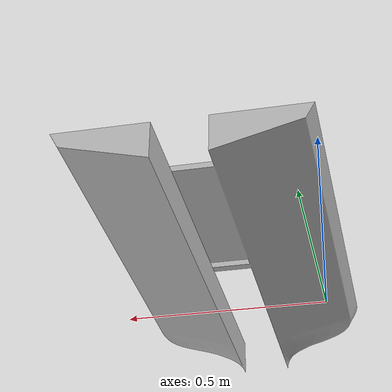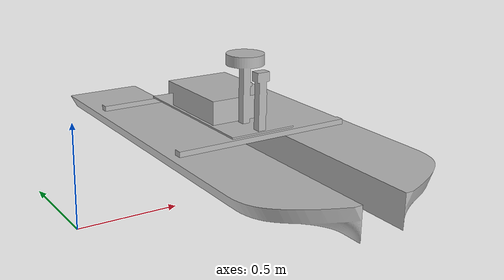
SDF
<?xml version='1.0'?>
<sdf version='1.6'>
  <model name='ida_model'>
    <static>true</static>

    <!-- Main hull link — named base_link to match TF2 convention -->
    <link name='base_link'>
      <visual name='visual'>
        <pose>0 0 0.5 1.5708 0 0</pose>
        <geometry>
          <mesh>
            <uri>Montaj1.STL</uri>
            <scale>0.001 0.001 0.001</scale>
          </mesh>
        </geometry>
      </visual>
      <collision name='collision'>
        <pose>0 0 0.5 1.5708 0 0</pose>
        <geometry>
          <mesh>
            <uri>Montaj1.STL</uri>
            <scale>0.001 0.001 0.001</scale>
          </mesh>
        </geometry>
      </collision>

      <!-- IMU — 100 Hz, body-fixed, provides orientation and angular velocity -->
      <sensor name="imu_sensor" type="imu">
        <always_on>true</always_on>
        <update_rate>100</update_rate>
        <topic>/imu/data</topic>
        <gz_frame_id>base_link</gz_frame_id>
        <imu>
          <angular_velocity>
            <x><noise type="gaussian"><mean>0</mean><stddev>0.009</stddev></noise></x>
            <y><noise type="gaussian"><mean>0</mean><stddev>0.009</stddev></noise></y>
            <z><noise type="gaussian"><mean>0</mean><stddev>0.009</stddev></noise></z>
          </angular_velocity>
          <linear_acceleration>
            <x><noise type="gaussian"><mean>0</mean><stddev>0.1</stddev></noise></x>
            <y><noise type="gaussian"><mean>0</mean><stddev>0.1</stddev></noise></y>
            <z><noise type="gaussian"><mean>0</mean><stddev>0.1</stddev></noise></z>
          </linear_acceleration>
        </imu>
      </sensor>

      <!-- GPS — 10 Hz, 0.5 m horizontal noise (typical marine GPS) -->
      <sensor name="gps_sensor" type="navsat">
        <always_on>true</always_on>
        <update_rate>10</update_rate>
        <topic>/gps/fix</topic>
        <gz_frame_id>base_link</gz_frame_id>
        <navsat>
          <position_sensing>
            <horizontal>
              <noise type="gaussian"><mean>0</mean><stddev>0.5</stddev></noise>
            </horizontal>
            <vertical>
              <noise type="gaussian"><mean>0</mean><stddev>0.5</stddev></noise>
            </vertical>
          </position_sensing>
        </navsat>
      </sensor>

    </link>

    <!-- Fixed joint attaching the LiDAR mount to the hull -->
    <joint name='lidar_joint' type='fixed'>
      <parent>base_link</parent>
      <child>lidar_link</child>
    </joint>

    <!-- LiDAR link — positioned 0.5m forward and 0.5m above the hull origin -->
    <link name='lidar_link'>
      <pose>0.5 0 0.5 0 0 0</pose>

      <!-- RPLIDAR C1: single horizontal plane, 360°, 12 m range, 10 Hz -->
      <sensor name='lidar_2d' type='gpu_lidar'>
        <always_on>true</always_on>
        <update_rate>10</update_rate>
        <lidar>
          <scan>
            <horizontal>
              <samples>1080</samples>
              <resolution>1</resolution>
              <min_angle>-3.14159</min_angle>
              <max_angle>3.14159</max_angle>
            </horizontal>
            <vertical>
              <samples>1</samples>
              <resolution>1</resolution>
              <min_angle>0</min_angle>
              <max_angle>0</max_angle>
            </vertical>
          </scan>
          <range>
            <min>0.15</min>
            <max>12.0</max>
          </range>
        </lidar>
        <topic>/scan</topic>
        <gz_frame_id>lidar_link</gz_frame_id>
      </sensor>
    </link>

  </model>
</sdf>
